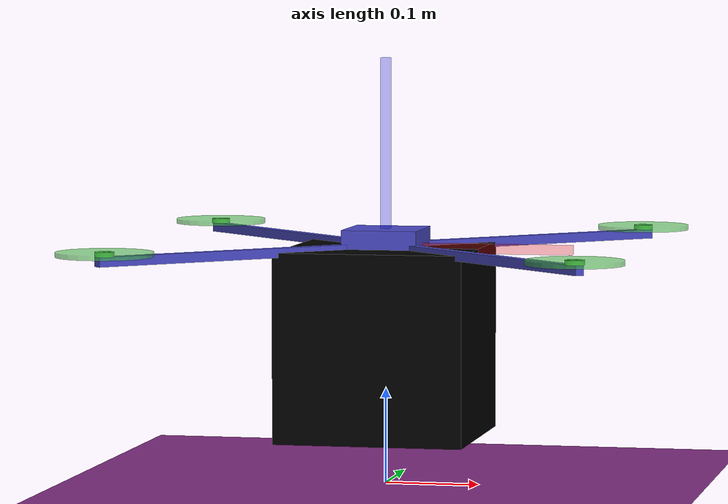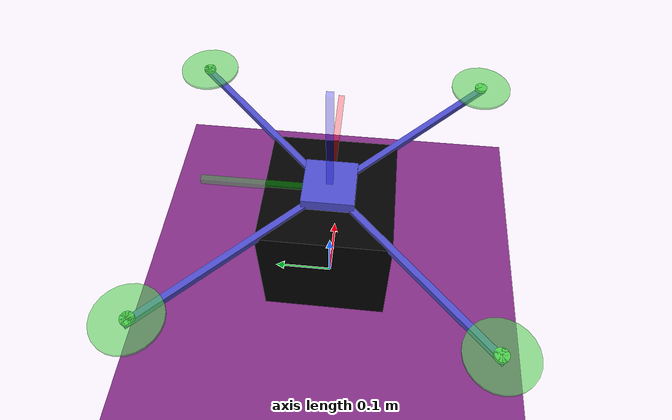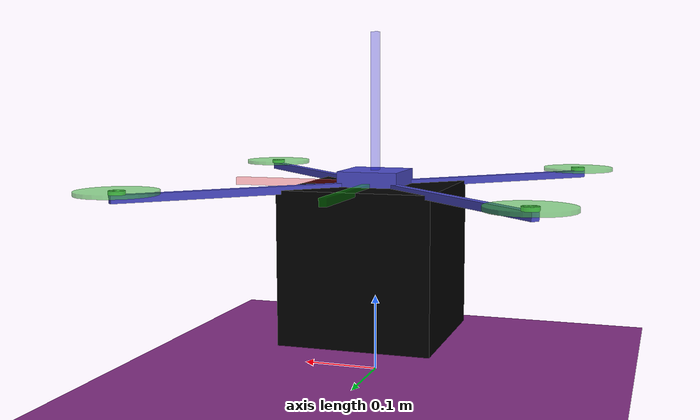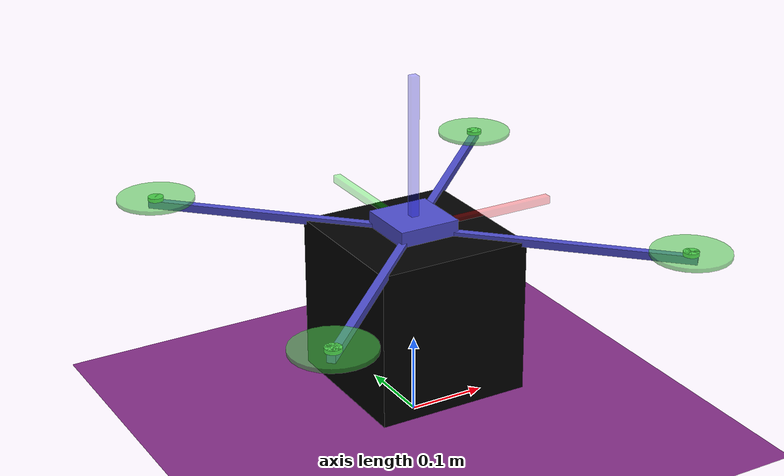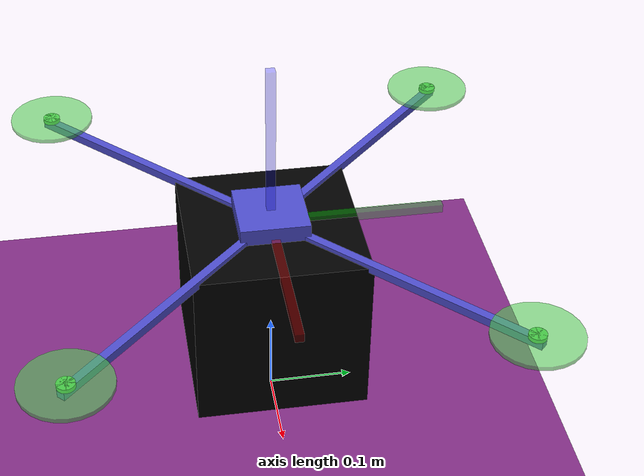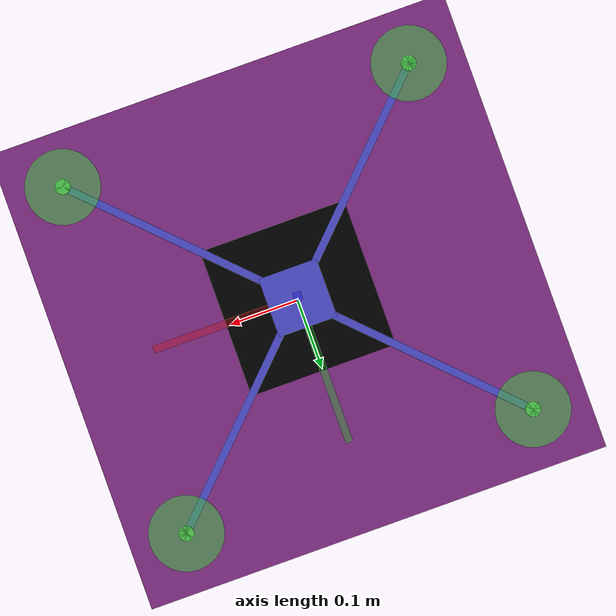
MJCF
<!--
Quadcopter with x configuration.
Front: Along body X-axis
-->

<mujoco model="quadrotor_x">

    <compiler angle="degree" inertiafromgeom="true" coordinate="local"/>
    <option	timestep="0.01" gravity="0 0 -9.81" density="1" viscosity="1e-5" integrator="RK4" wind ="0 0 0"/>

    <asset>
        <texture builtin="gradient" type="skybox" height="100" width="100" rgb1=".957 .941 .941" rgb2=".957 .941 .941"/>
        <texture name="texgeom" builtin="flat" height="1278" mark="cross" markrgb="1 1 1" random="0.01" rgb1="0.8 0.6 0.4" rgb2="0.8 0.6 0.4" type="cube" width="127"/>
        <texture name="texplane" builtin="checker" height="100" width="100" rgb1="0 0 0" rgb2="0.8 0.8 0.8" type="2d"/>
        <material name="MatPlane" reflectance="0.5" shininess="1" specular="1" texrepeat="0 0" texture="texplane"/>
        <material name="geom" texture="texgeom" texuniform="true"/>
    </asset>

    <worldbody>
        <light cutoff="100" diffuse="1 1 1" dir="-0 0 -1.3" directional="true" exponent="1" pos="0 0 1.3" specular=".1 .1 .1"/>
        <geom conaffinity="1" condim="3" material="MatPlane" name="floor" pos="0 0 0" rgba=".506 .176 .518 1" size="5 5 0.2" type="plane"/>

        <body name="drone1" pos="0 0 .25">
            <joint name="root" type="free" damping="0" armature="0" pos="0 0 0" limited="false"/>
            <camera name="track" mode="trackcom" pos="0 -3 1.0" xyaxes="1 0 0 0 0 1"/>

            <geom name="core_geom" type="box" pos="0 0 0" quat="1 0 0 0" size=".04 .04 .02" rgba=".3 .3 .8 1" mass="0.05"/>
            <site name="end1" pos="0 0 0" size="0.01"/>

            <geom name="arm_front_left" type="box" pos=".14 .14 0" size=".15 .005 .005" quat=".924 0 0 .383" rgba=".3 .3 .8 1" mass=".0125"/>
            <geom name="arm_front_right" type="box" pos=".14 -.14 0" size=".15 .005 .005" quat=".383 0 0 .924" rgba=".3 .3 .8 1" mass=".0125"/>
            <geom name="arm_back_right" type="box" pos="-.14 -.14 0" size=".15 .005 .005" quat="-.383 0 0 .924" rgba=".3 .3 .8 1" mass=".0125"/>
            <geom name="arm_back_left" type="box" pos="-.14 .14 0" size=".15 .005 .005" quat=".924 0 0 -.383" rgba=".3 .3 .8 1" mass=".0125"/>

            <site name="motor_front_left" type="cylinder" pos=".24 .24 .0075" size=".01 .0025" quat="1 0 0 0" rgba=".3 .8 .3 1"/>
            <site name="motor_front_right" type="cylinder" pos=".24 -.24 .0075" size=".01 .0025" quat="1 0 0 0" rgba=".3 .8 .3 1"/>
            <site name="motor_back_right" type="cylinder" pos="-.24 -.24 .0075" size=".01 .0025" quat="1 0 0 0" rgba=".3 .8 .3 1"/>
            <site name="motor_back_left" type="cylinder" pos="-.24  .24 .0075" size=".01 .0025" quat="1 0 0 0" rgba=".3 .8 .3 1"/>

            <geom name="thruster_front_left" type="cylinder" pos=".24 .24 .0075" size=".05 .0025" quat="1 0 0 0" rgba=".3 .8 .3 0.6" mass=".0125"/>
            <geom name="thruster_front_right" type="cylinder" pos=".24 -.24 .0075" size=".05 .0025" quat="1 0 0 0" rgba=".3 .8 .3 0.6" mass=".0125"/>
            <geom name="thruster_back_right" type="cylinder" pos="-.24 -.24 .0075" size=".05 .0025" quat="1 0 0 0" rgba=".3 .8 .3 0.6" mass=".0125"/>
            <geom name="thruster_back_left" type="cylinder" pos="-.24 .24 .0075" size=".05 .0025" quat="1 0 0 0" rgba=".3 .8 .3 0.6" mass=".0125"/>

            <site name="x_axis" type="box" pos=".1 0 0" size=".1 .005 .005" quat="1 0 0 0" rgba="1 0 0 0.3"/>
            <site name="y_axis" type="box" pos="0 .1 0" size=".1 .005 .005" quat=".707 0 0 .707" rgba="0 1 0 0.3"/>
            <site name="z_axis" type="box" pos="0 0 .1" size=".1 .005 .005" quat="-.707 0 .707 0" rgba="0 0 1 0.3"/>

        </body>

        <body name="PAYLOAD" pos="0 0 0.15" euler="90 0 0">
            <joint type="free"/>
            <geom name="payload" type="box" pos="0 0 0" size=".1 .1 .1" rgba="0 0 0 1" mass="0.05"/>
            <site name="end2" pos="0 0 0" size="0.01"/>
        </body>

    </worldbody>

    <actuator>
        <motor ctrllimited="true" ctrlrange="0 3" gear="0 0 1 0 0 -.1" site="motor_front_left"/>
        <motor ctrllimited="true" ctrlrange="0 3" gear="0 0 1 0 0 .1" site="motor_back_left"/>
        <motor ctrllimited="true" ctrlrange="0 3" gear="0 0 1 0 0 -.1" site="motor_back_right"/>
        <motor ctrllimited="true" ctrlrange="0 3" gear="0 0 1 0 0 .1" site="motor_front_right"/>
    </actuator>

    <tendon>
        <spatial limited="true" range="0 2" width="0.005">
        <site site="end2"/>
        <site site="end1"/>
        </spatial>
    </tendon>

</mujoco>
